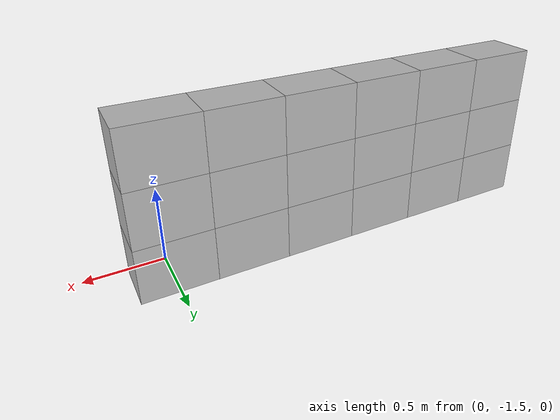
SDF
<?xml version='1_0'?>
<sdf version="1.5">
  <model name="realistic_curve_side2_1">
    <pose>0 0 0 0 0 1.57079633</pose>
    <static>true</static>

<!--1st corridor wall facing-->
   <!-- 1st row -->
    <link name="link_0_0">
      <collision name="collision_0_0">
        <pose>-1.3 0 0.18 0 0 0</pose>
        <geometry>
          <box>
            <size>0.31 0.465 0.36</size>
          </box>
        </geometry>
      </collision>
      <visual name='visual_0_0'>
        <pose>-1.3 0 0.18 0 0 0</pose>
        <geometry>
            <mesh>
              <uri>model://L-corridor_curve_real/meshes/exact_blue_circle_border.dae</uri>
            </mesh>
        </geometry>
      </visual>
    </link>

    <link name="link_1_0">
      <collision name="collision_1_0">
        <pose> -1.3 0.54 0 0 0</pose>
        <geometry>
          <box>
            <size>0.31 0.465 0.36</size>
          </box>
        </geometry>
      </collision>
      <visual name='visual_1_0'>
        <pose>-1.3 0 0.54 0 0 0</pose>
        <geometry>
            <mesh>
              <uri>model://L-corridor_curve_real/meshes/exact_red_circle_border.dae</uri>
            </mesh>
        </geometry>
      </visual>
    </link>

    <link name="link_2_0">
      <collision name="collision_2_0">
        <pose>-1.3 0 0.9 0 0 0</pose>
        <geometry>
          <box>
            <size>0.31 0.465 0.36</size>
          </box>
        </geometry>
      </collision>
      <visual name='visual_2_0'>
        <pose>-1.3 0 0.9 0 0 0</pose>
        <geometry>
            <mesh>
              <uri>model://L-corridor_curve_real/meshes/exact_green_circle_border.dae</uri>
            </mesh>
        </geometry>
      </visual>
    </link>
	<!-- 2 row -->
    <link name="link_3_0">
      <collision name="collision_3_0">
        <pose>-1.3 0.465 0.54 0 0 0</pose>
        <geometry>
          <box>
            <size>0.31 0.465 0.36</size>
          </box>
        </geometry>
      </collision>
      <visual name='visual_3_0'>
        <pose>-1.3 0.465 0.54 0 0 0</pose>
        <geometry>
            <mesh>
              <uri>model://L-corridor_curve_real/meshes/exact_blue_circle_border.dae</uri>
            </mesh>
        </geometry>
      </visual>
    </link>

    <link name="link_4_0">
      <collision name="collision_4_0">
        <pose>-1.3 0.465 0.9 0 0 0</pose>
        <geometry>
          <box>
            <size>0.31 0.465 0.36</size>
          </box>
        </geometry>
      </collision>
      <visual name='visual_4_0'>
        <pose>-1.3 0.465 0.9 0 0 0</pose>
        <geometry>
            <mesh>
              <uri>model://L-corridor_curve_real/meshes/exact_red_circle_border.dae</uri>
            </mesh>
        </geometry>
      </visual>
    </link>

    <link name="link_5_0">
      <collision name="collision_5_0">
        <pose>-1.3 0.465 0.18 0 0 0</pose>
        <geometry>
          <box>
            <size>0.31 0.465 0.36</size>
          </box>
        </geometry>
      </collision>
      <visual name='visual_5_0'>
        <pose>-1.3 0.465 0.18 0 0 0</pose>
        <geometry>
            <mesh>
              <uri>model://L-corridor_curve_real/meshes/exact_green_circle_border.dae</uri>
            </mesh>
        </geometry>
      </visual>
    </link>
	<!-- 3 row -->
    <link name="link_6_0">
      <collision name="collision_6_0">
        <pose>-1.3 0.93 0.9 0 0 0</pose>
        <geometry>
          <box>
            <size>0.31 0.465 0.36</size>
          </box>
        </geometry>
      </collision>
      <visual name='visual_6_0'>
        <pose>-1.3 0.93 0.9 0 0 0</pose>
        <geometry>
            <mesh>
              <uri>model://L-corridor_curve_real/meshes/exact_blue_circle_border.dae</uri>
            </mesh>
        </geometry>
      </visual>
    </link>

    <link name="link_7_0">
      <collision name="collision_7_0">
        <pose>-1.3 0.93 0.18 0 0 0</pose>
        <geometry>
          <box>
            <size>0.31 0.465 0.36</size>
          </box>
        </geometry>
      </collision>
      <visual name='visual_7_0'>
        <pose>-1.3 0.93 0.18 0 0 0</pose>
        <geometry>
            <mesh>
              <uri>model://L-corridor_curve_real/meshes/exact_red_circle_border.dae</uri>
            </mesh>
        </geometry>
      </visual>
    </link>

    <link name="link_8_0">
      <collision name="collision_8_0">
        <pose>-1.3 0.93 0.54 0 0 0</pose>
        <geometry>
          <box>
            <size>0.31 0.465 0.36</size>
          </box>
        </geometry>
      </collision>
      <visual name='visual_8_0'>
        <pose>-1.3 0.93 0.54 0 0 0</pose>
        <geometry>
            <mesh>
              <uri>model://L-corridor_curve_real/meshes/exact_green_circle_border.dae</uri>
            </mesh>
        </geometry>
      </visual>
    </link>

    <!-- 4 row -->
    <link name="link_9_0">
      <collision name="collision_9_0">
        <pose>-1.3 1.395 0.18 0 0 0</pose>
        <geometry>
          <box>
            <size>0.31 0.465 0.36</size>
          </box>
        </geometry>
      </collision>
      <visual name='visual_9_0'>
        <pose>-1.3 1.395 0.18 0 0 0</pose>
        <geometry>
            <mesh>
              <uri>model://L-corridor_curve_real/meshes/exact_blue_circle_border.dae</uri>
            </mesh>
        </geometry>
      </visual>
    </link>

    <link name="link_10_0">
      <collision name="collision_10_0">
        <pose>-1.3 1.395 0.54 0 0 0</pose>
        <geometry>
          <box>
            <size>0.31 0.465 0.36</size>
          </box>
        </geometry>
      </collision>
      <visual name='visual_10_0'>
        <pose>-1.3 1.395 0.54 0 0 0</pose>
        <geometry>
            <mesh>
              <uri>model://L-corridor_curve_real/meshes/exact_red_circle_border.dae</uri>
            </mesh>
        </geometry>
      </visual>
    </link>

    <link name="link_11_0">
      <collision name="collision_11_0">
        <pose>-1.3 1.395 0.9 0 0 0</pose>
        <geometry>
          <box>
            <size>0.31 0.465 0.36</size>
          </box>
        </geometry>
      </collision>
      <visual name='visual_11_0'>
        <pose>-1.3 1.395 0.9 0 0 0</pose>
        <geometry>
            <mesh>
              <uri>model://L-corridor_curve_real/meshes/exact_green_circle_border.dae</uri>
            </mesh>
        </geometry>
      </visual>
    </link>

	<!-- 5 row -->
    <link name="link_12_0">
      <collision name="collision_12_0">
        <pose>-1.3 1.86 0.54 0 0 0</pose>
        <geometry>
          <box>
            <size>0.31 0.465 0.36</size>
          </box>
        </geometry>
      </collision>
      <visual name='visual_12_0'>
        <pose>-1.3 1.86 0.54 0 0 0</pose>
        <geometry>
            <mesh>
              <uri>model://L-corridor_curve_real/meshes/exact_blue_circle_border.dae</uri>
            </mesh>
        </geometry>
      </visual>
    </link>

    <link name="link_13_0">
      <collision name="collision_13_0">
        <pose>-1.3 1.86 0.9 0 0 0</pose>
        <geometry>
          <box>
            <size>0.31 0.465 0.36</size>
          </box>
        </geometry>
      </collision>
      <visual name='visual_13_0'>
        <pose>-1.3 1.86 0.9 0 0 0</pose>
        <geometry>
            <mesh>
              <uri>model://L-corridor_curve_real/meshes/exact_red_circle_border.dae</uri>
            </mesh>
        </geometry>
      </visual>
    </link>

    <link name="link_14_0">
      <collision name="collision_14_0">
        <pose>-1.3 1.86 0.18 0 0 0</pose>
        <geometry>
          <box>
            <size>0.31 0.465 0.36</size>
          </box>
        </geometry>
      </collision>
      <visual name='visual_14_0'>
        <pose>-1.3 1.86 0.18 0 0 0</pose>
        <geometry>
            <mesh>
              <uri>model://L-corridor_curve_real/meshes/exact_green_circle_border.dae</uri>
            </mesh>
        </geometry>
      </visual>
    </link>
	<!-- 6 row -->
    <link name="link_15_0">
      <collision name="collision_15_0">
        <pose>-1.3 2.325 0 0 0</pose>
        <geometry>
          <box>
            <size>0.31 0.465 0.36</size>
          </box>
        </geometry>
      </collision>
      <visual name='visual_15_0'>
        <pose>-1.3 2.325 0.9 0 0 0</pose>
        <geometry>
            <mesh>
              <uri>model://L-corridor_curve_real/meshes/exact_blue_circle_border.dae</uri>
            </mesh>
        </geometry>
      </visual>
    </link>

    <link name="link_16_0">
      <collision name="collision_16_0">
        <pose>-1.3 2.325 0.18 0 0 0</pose>
        <geometry>
          <box>
            <size>0.31 0.465 0.36</size>
          </box>
        </geometry>
      </collision>
      <visual name='visual_16_0'>
        <pose>-1.3 2.325 0.18 0 0 0</pose>
        <geometry>
            <mesh>
              <uri>model://L-corridor_curve_real/meshes/exact_red_circle_border.dae</uri>
            </mesh>
        </geometry>
      </visual>
    </link>

    <link name="link_17_0">
      <collision name="collision_17_0">
        <pose>-1.3 2.325 0.54 0 0 0</pose>
        <geometry>
          <box>
            <size>0.31 0.465 0.36</size>
          </box>
        </geometry>
      </collision>
      <visual name='visual_17_0'>
        <pose>-1.3 2.325 0.54 0 0 0</pose>
        <geometry>
            <mesh>
              <uri>model://L-corridor_curve_real/meshes/exact_green_circle_border.dae</uri>
            </mesh>
        </geometry>
      </visual>
    </link>

  </model>
</sdf>
